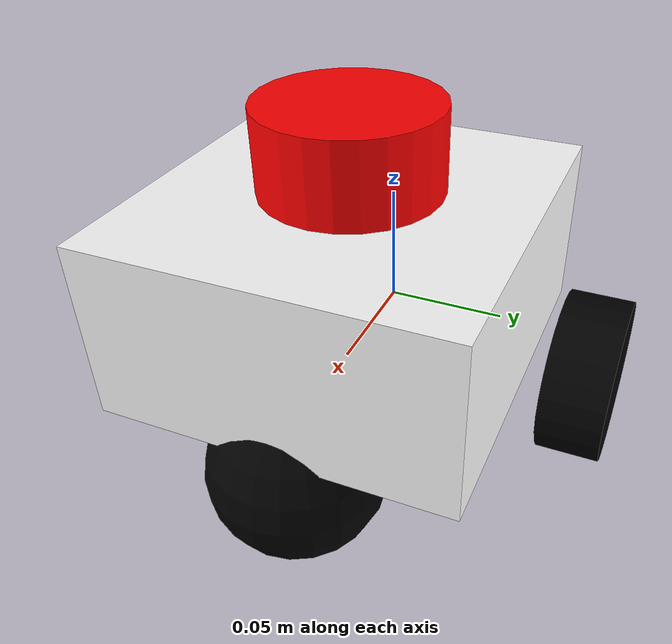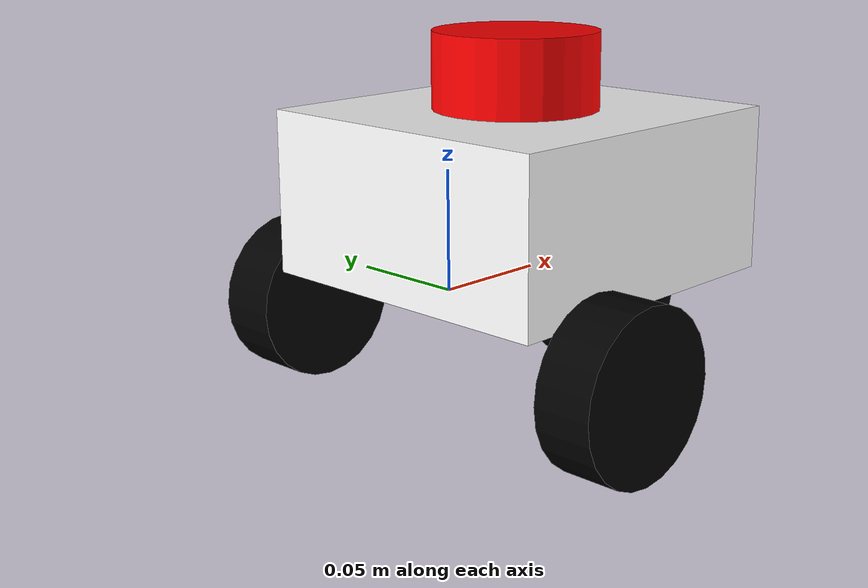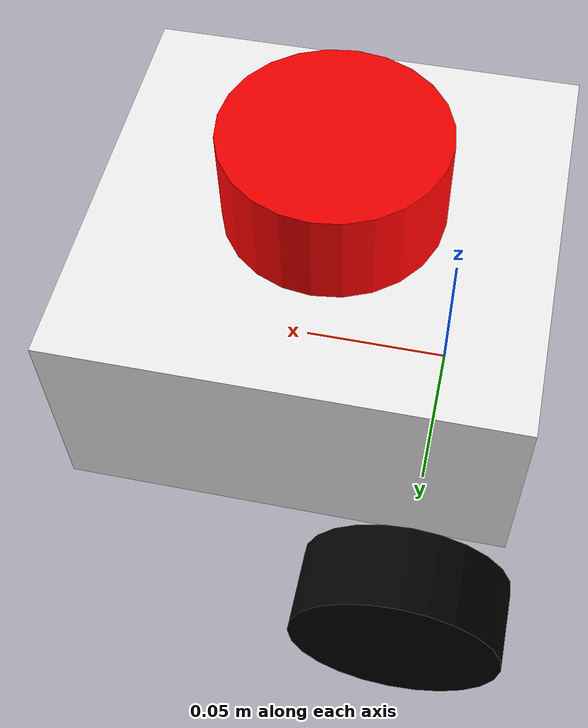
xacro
<?xml version="1.0"?>
<robot xmlns:xacro="http://www.ros.org/wiki/xacro" >
<!-- /home/jetson/myspace/autoJetsonBot/src/my_robot_launch/urdf/robot_core.xacro -->
<xacro:include filename="inertial_macros.xacro" />

    <!-- COLORS FOR ROBOT PARTS -->
    <material name="grey">
        <color rgba="0.5 0.5 0.5 1"/>
    </material>
    <material name="red">
        <color rgba="1 0 0 1"/>
    </material>
    <material name="green">
        <color rgba="0 1 0 1"/>
    </material>
    <material name="blue">
        <color rgba="0 0 1 1"/>
    </material>
    <material name="yellow">
        <color rgba="1 1 0 1"/>
    </material>
    <material name="orange">
        <color rgba="1 0.5 0 1"/>
    </material>
    <material name="purple">
        <color rgba="0.5 0 0.5 1"/>
    </material>
    <material name="black">
        <color rgba="0 0 0 1"/>
    </material>
    <material name="white">
        <color rgba="1 1 1 1"/>
    </material>

    <!-- ROBOT BASE LINK -->
    <link name="base_link">
    </link>

    <!-- BASE_FOOTPRINT LINK -->

    <joint name="base_footprint_joint" type="fixed">
        <parent link="base_link"/>
        <child link="base_footprint"/>
        <origin xyz="0 0 0" rpy="0 0 0"/>
    </joint>

    <link name="base_footprint">
    </link>

    <!-- ROBOT CHASSIS LINK-->
    <joint name="chassis_joint" type="fixed">
        <origin xyz="-0.03 0 0" rpy="0 0 0"/>
        <parent link="base_link"/>
        <child link="chassis"/>
    </joint>

    <!-- ROBOT CHASSIS -->
    <link name="chassis">
        <visual>
            <origin xyz="0.0725 0 0.035" rpy="0 0 0"/>
            <geometry>
                <box size="0.145 0.14 0.07"/>
            </geometry>
            <material name="white"/>
        </visual>
        <collision>
            <origin xyz="0.0725 0 0.035" rpy="0 0 0"/>
            <geometry>
                <box size="0.145 0.14 0.07"/>
            </geometry>
        </collision>
        <xacro:inertial_box mass="0.5" x="0.145" y="0.14" z="0.07">
            <origin xyz="0.0725 0 0.035" rpy="0 0 0"/>
        </xacro:inertial_box>
    </link>
    <gazebo reference="chassis">
        <material>Gazebo/White</material>
    </gazebo>

    <!-- ROBOT WHEELS -->

    <!-- LEFT WHEEL -->
    <joint name="left_wheel_joint" type="continuous">
        <origin xyz="0 0.09 -0.02" rpy="-${pi/2} 0 0"/>
        <parent link="base_link"/>
        <child link="left_wheel"/>
        <axis xyz="0 0 1"/>
    </joint>

    <link name="left_wheel">
        <visual>
            <origin xyz="0 0 0" rpy="0 0 0"/>
            <geometry>
                <cylinder radius="0.035" length="0.027"/>
            </geometry>
            <material name="black"/>
        </visual>
        <collision>
            <origin xyz="0 0 0" rpy="0 0 0"/>
            <geometry>
                <cylinder radius="0.035" length="0.027"/>
            </geometry>
        </collision>
        <xacro:inertial_cylinder mass="0.1" length="0.027" radius="0.035">
            <origin xyz="0 0 0" rpy="0 0 0"/>
        </xacro:inertial_cylinder>

    </link>
    <gazebo reference="left_wheel">
        <material>Gazebo/Black</material>
    </gazebo>

    <!-- RIGHT WHEEL -->
    <joint name="right_wheel_joint" type="continuous">
        <origin xyz="0 -0.09 -0.02" rpy="${pi/2} 0 0"/>
        <parent link="base_link"/>
        <child link="right_wheel"/>
        <axis xyz="0 0 -1"/>
    </joint>

    <link name="right_wheel">
        <visual>
            <origin xyz="0 0 0" rpy="0 0 0"/>
            <geometry>
                <cylinder radius="0.035" length="0.025"/>
            </geometry>
            <material name="black"/>
        </visual>
        <collision>
            <origin xyz="0 0 0" rpy="0 0 0"/>
            <geometry>
                <cylinder radius="0.035" length="0.025"/>
            </geometry>
        </collision>
        <xacro:inertial_cylinder mass="0.1" length="0.025" radius="0.035">
            <origin xyz="0 0 0" rpy="0 0 0"/>
        </xacro:inertial_cylinder>
    </link>
    <gazebo reference="right_wheel">
        <material>Gazebo/Black</material>
    </gazebo>

    <!-- CASTER WHEEL -->
    <joint name="caster_wheel_joint" type="fixed">
        <origin xyz="0.095 0 -0.02" rpy="0 0 0"/>
        <parent link="base_link"/>
        <child link="caster_wheel"/>
    </joint>

    <link name="caster_wheel">
        <visual>
            <origin xyz="0 0 0" rpy="0 0 0"/>
            <geometry>
                <sphere radius="0.035"/>
            </geometry>
            <material name="black"/>
        </visual>
        <collision>
            <origin xyz="0 0 0" rpy="0 0 0"/>
            <geometry>
                <sphere radius="0.035"/>
            </geometry>
        </collision>
        <xacro:inertial_sphere mass="0.1" radius="0.035">
            <origin xyz="0 0 0" rpy="0 0 0"/>
        </xacro:inertial_sphere>
    </link>
    <gazebo reference="caster_wheel">
        <material>Gazebo/Black</material>
        <mu1 value="0.001"/>
        <mu2 value="0.001"/>
    </gazebo>

    <!-- ROBOT LIDAR -->
    <joint name="lidar_joint" type="fixed">
        <origin xyz="0.07 0 0.07" rpy="0 0 0"/>
        <parent link="chassis"/>
        <child link="lidar"/>
    </joint>

    <link name="lidar">
        <visual>
            <origin xyz="0 0 0" rpy="0 0 0"/>

            <geometry>
                <cylinder radius="0.035" length="0.065"/>
            </geometry>
            <material name="red"/>
        </visual>
        <collision>
            <origin xyz="0 0 0" rpy="0 0 0"/>

            <geometry>
                <cylinder radius="0.035" length="0.065"/>
            </geometry>
        </collision>
    </link>
    <gazebo reference="lidar">
        <material>Gazebo/Red</material>
    </gazebo>

</robot>
